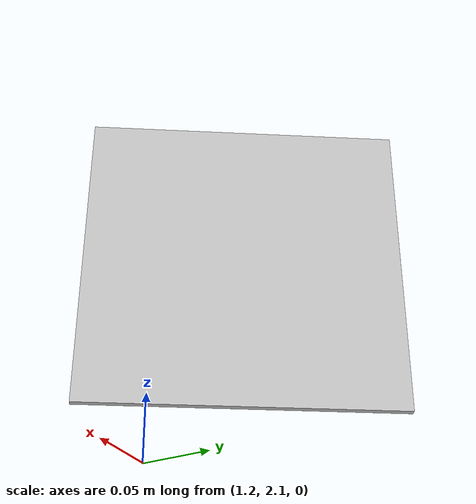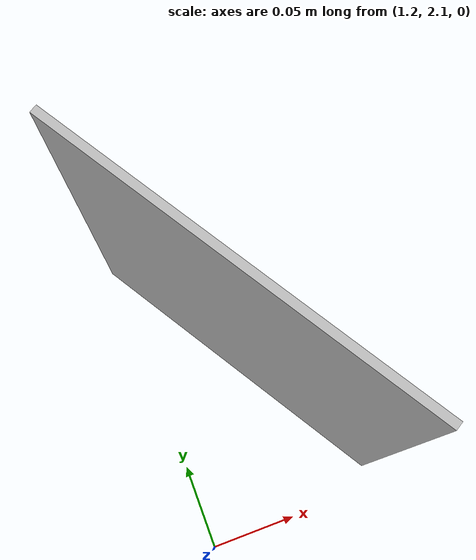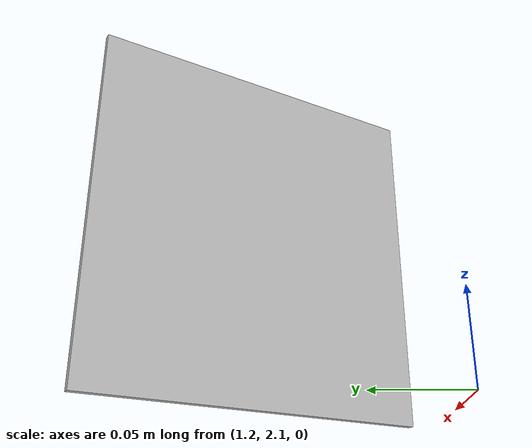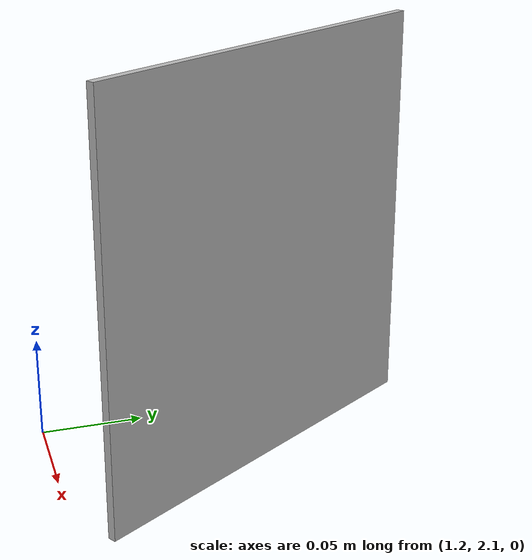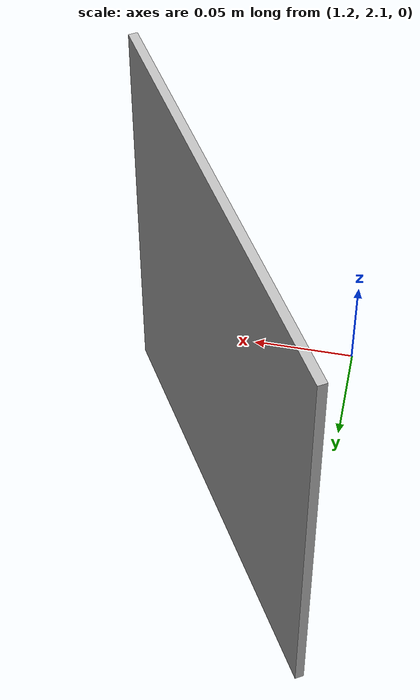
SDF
<?xml version="1.0" ?><sdf version="1.6">
  <model name="qr9">
    <static>true</static>
    <link name="link">
      <visual name="visual">
        <geometry>
          <mesh>
            <uri>model://qr9/meshes/qr9.dae</uri>
          <scale>0.4 0.4 0.4</scale></mesh>
        </geometry>
      </visual>
    </link>
    <pose>1.25 2.2 0 0 -0 0.55</pose>
  </model>
</sdf>
